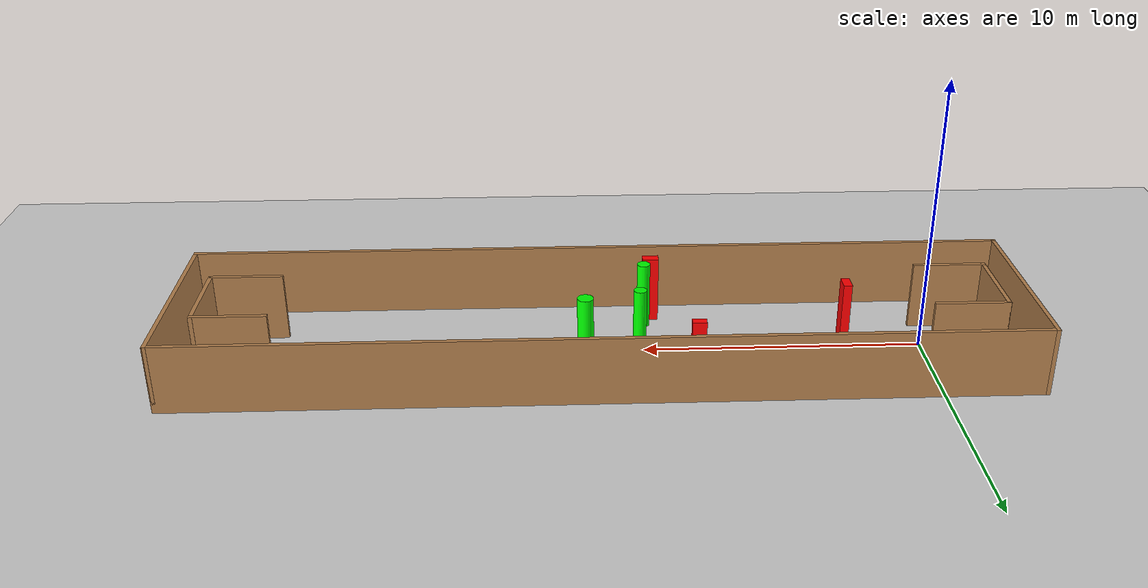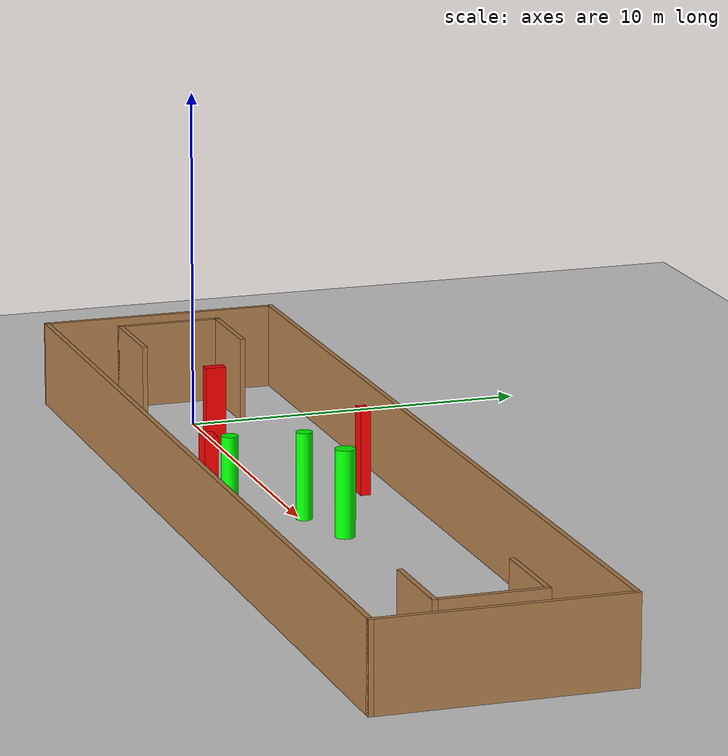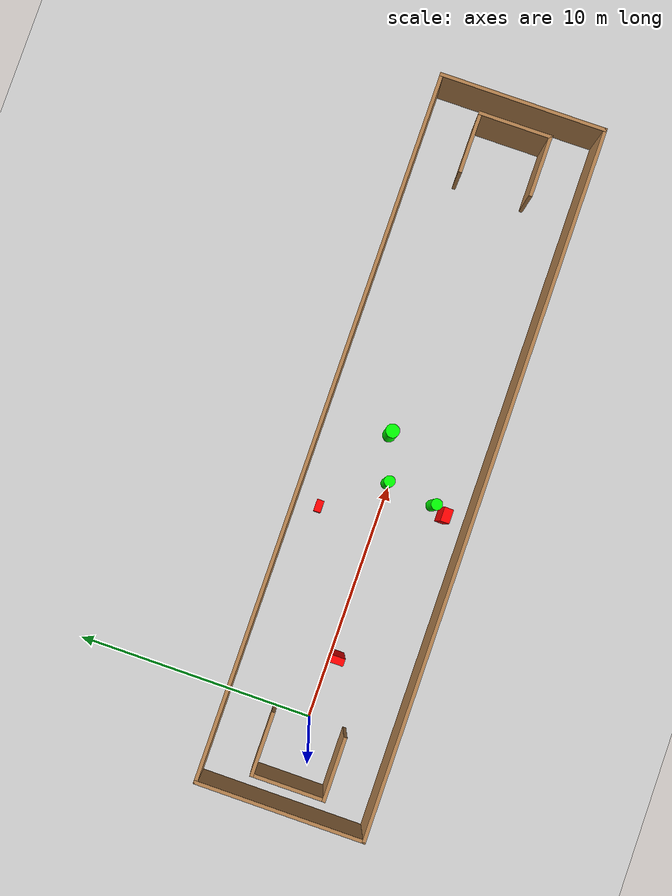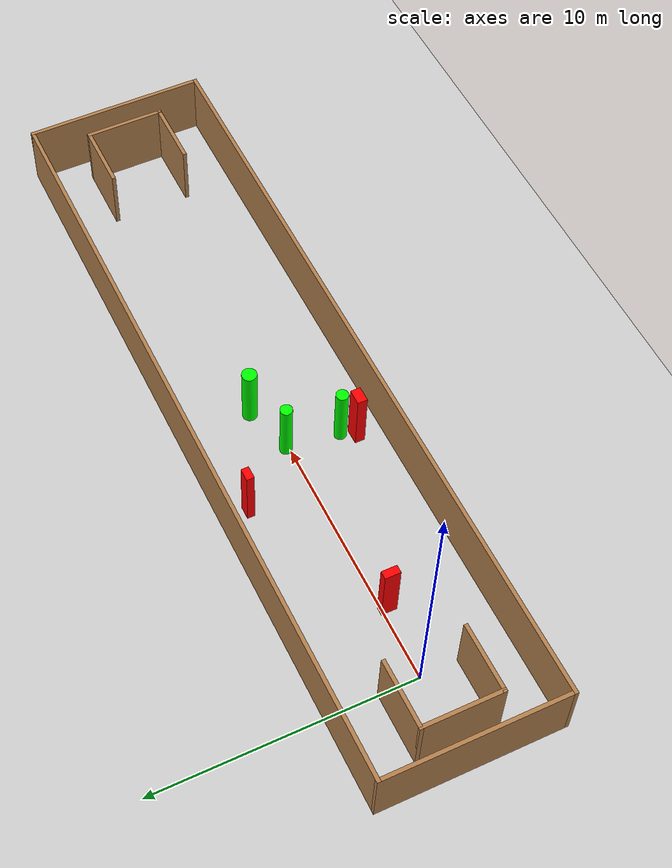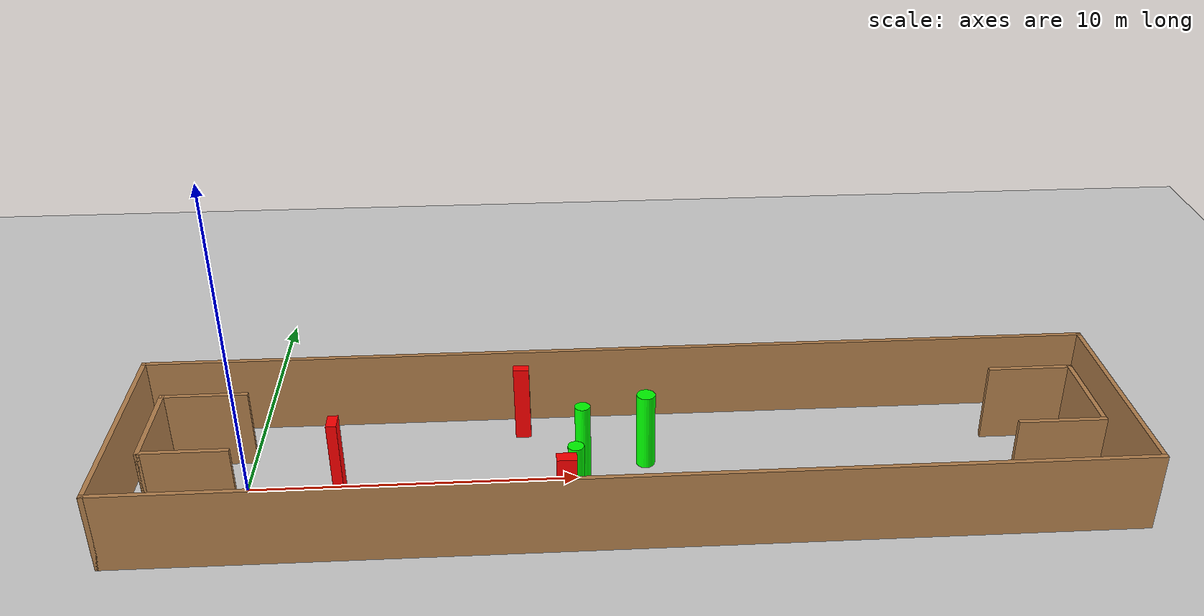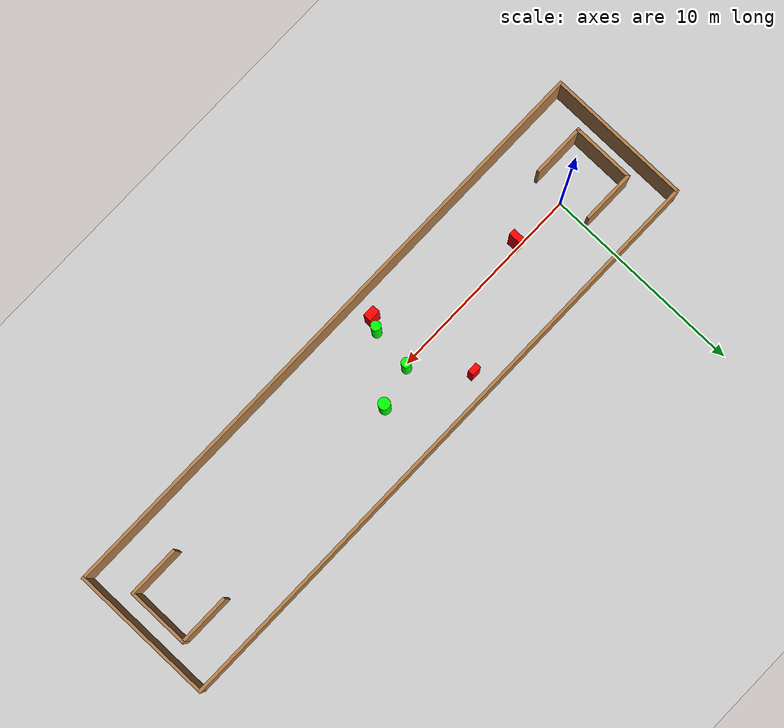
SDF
<sdf version="1.7">
 <world name="default">
  <light name="sun" type="directional">
   <pose>0 0 10 0 -0 0</pose>
   <diffuse>0.8 0.8 0.8 1</diffuse>
   <specular>0.2 0.2 0.2 1</specular>
   <attenuation>
    <range>1000</range>
    <constant>0.9</constant>
    <linear>0.01</linear>
    <quadratic>0.001</quadratic>
   </attenuation>
   <direction>-0.5 0.1 -0.9</direction>
   <spot><inner_angle>0</inner_angle><outer_angle>0</outer_angle><falloff>0</falloff></spot>
  </light>
  <model name="ground_plane">
   <static>1</static>
   <link name="link">
    <collision name="collision">
     <geometry><plane><normal>0 0 1</normal><size>100 100</size></plane></geometry>
     <surface>
      <contact><collide_bitmask>65535</collide_bitmask></contact>
      <friction><ode><mu>100</mu><mu2>50</mu2></ode></friction>
     </surface>
    </collision>
    <visual name="visual">
     <cast_shadows>0</cast_shadows>
     <geometry><plane><normal>0 0 1</normal><size>100 100</size></plane></geometry>
     <material>
      <script><uri>file://media/materials/scripts/gazebo.material</uri><name>Gazebo/Grey</name></script>
     </material>
    </visual>
   </link>
  </model>
  <gravity>0 0 -9.8</gravity>
  <magnetic_field>6e-06 2.3e-05 -4.2e-05</magnetic_field>
  <atmosphere type="adiabatic"/>
  <physics type="ode">
   <max_step_size>0.001</max_step_size>
   <real_time_factor>1</real_time_factor>
   <real_time_update_rate>1000</real_time_update_rate>
  </physics>
  <scene><ambient>0.4 0.4 0.4 1</ambient><background>0.7 0.7 0.7 1</background><shadows>1</shadows></scene>
  <spherical_coordinates>
   <surface_model>EARTH_WGS84</surface_model>
   <latitude_deg>0</latitude_deg>
   <longitude_deg>0</longitude_deg>
   <elevation>0</elevation>
   <heading_deg>0</heading_deg>
  </spherical_coordinates>
  <model name="my_base_walls">
   <link name="Wall_0">
    <collision name="Wall_0_Collision">
     <geometry><box><size>7.15 0.15 2.5</size></box></geometry>
     <pose>0 0 1.25 0 -0 0</pose>
    </collision>
    <visual name="Wall_0_Visual">
     <pose>0 0 1.25 0 -0 0</pose>
     <geometry><box><size>7.15 0.15 2.5</size></box></geometry>
     <material>
      <script><uri>file://media/materials/scripts/gazebo.material</uri><name>Gazebo/Wood</name></script>
      <ambient>1 1 1 1</ambient>
     </material>
     <meta><layer>0</layer></meta>
    </visual>
    <pose>-15 0 0 0 -0 1.5708</pose>
   </link>
   <link name="Wall_10">
    <collision name="Wall_10_Collision">
     <geometry><box><size>2.65 0.15 2.5</size></box></geometry>
     <pose>0 0 1.25 0 -0 0</pose>
    </collision>
    <visual name="Wall_10_Visual">
     <pose>0 0 1.25 0 -0 0</pose>
     <geometry><box><size>2.65 0.15 2.5</size></box></geometry>
     <material>
      <script><uri>file://media/materials/scripts/gazebo.material</uri><name>Gazebo/Wood</name></script>
      <ambient>1 1 1 1</ambient>
     </material>
     <meta><layer>0</layer></meta>
    </visual>
    <pose>-12.75 -1.5 0 0 -0 0</pose>
   </link>
   <link name="Wall_12">
    <collision name="Wall_12_Collision">
     <geometry><box><size>2.65 0.15 2.5</size></box></geometry>
     <pose>0 0 1.25 0 -0 0</pose>
    </collision>
    <visual name="Wall_12_Visual">
     <pose>0 0 1.25 0 -0 0</pose>
     <geometry><box><size>2.65 0.15 2.5</size></box></geometry>
     <material>
      <script><uri>file://media/materials/scripts/gazebo.material</uri><name>Gazebo/Wood</name></script>
      <ambient>1 1 1 1</ambient>
     </material>
     <meta><layer>0</layer></meta>
    </visual>
    <pose>-12.75 1.5 0 0 -0 0</pose>
   </link>
   <link name="Wall_14">
    <collision name="Wall_14_Collision">
     <geometry><box><size>3.15 0.15 2.5</size></box></geometry>
     <pose>0 0 1.25 0 -0 0</pose>
    </collision>
    <visual name="Wall_14_Visual">
     <pose>0 0 1.25 0 -0 0</pose>
     <geometry><box><size>3.15 0.15 2.5</size></box></geometry>
     <material>
      <script><uri>file://media/materials/scripts/gazebo.material</uri><name>Gazebo/Wood</name></script>
      <ambient>1 1 1 1</ambient>
     </material>
     <meta><layer>0</layer></meta>
    </visual>
    <pose>14 0 0 0 -0 -1.5708</pose>
   </link>
   <link name="Wall_15">
    <collision name="Wall_15_Collision">
     <geometry><box><size>2.65 0.15 2.5</size></box></geometry>
     <pose>0 0 1.25 0 -0 0</pose>
    </collision>
    <visual name="Wall_15_Visual">
     <pose>0 0 1.25 0 -0 0</pose>
     <geometry><box><size>2.65 0.15 2.5</size></box></geometry>
     <material>
      <script><uri>file://media/materials/scripts/gazebo.material</uri><name>Gazebo/Wood</name></script>
      <ambient>1 1 1 1</ambient>
     </material>
     <meta><layer>0</layer></meta>
    </visual>
    <pose>12.75 -1.5 0 0 -0 3.14159</pose>
   </link>
   <link name="Wall_17">
    <collision name="Wall_17_Collision">
     <geometry><box><size>2.65 0.15 2.5</size></box></geometry>
     <pose>0 0 1.25 0 -0 0</pose>
    </collision>
    <visual name="Wall_17_Visual">
     <pose>0 0 1.25 0 -0 0</pose>
     <geometry><box><size>2.65 0.15 2.5</size></box></geometry>
     <material>
      <script><uri>file://media/materials/scripts/gazebo.material</uri><name>Gazebo/Wood</name></script>
      <ambient>1 1 1 1</ambient>
     </material>
     <meta><layer>0</layer></meta>
    </visual>
    <pose>12.75 1.5 0 0 -0 3.14159</pose>
   </link>
   <link name="Wall_2">
    <collision name="Wall_2_Collision">
     <geometry><box><size>30.15 0.15 2.5</size></box></geometry>
     <pose>0 0 1.25 0 -0 0</pose>
    </collision>
    <visual name="Wall_2_Visual">
     <pose>0 0 1.25 0 -0 0</pose>
     <geometry><box><size>30.15 0.15 2.5</size></box></geometry>
     <material>
      <script><uri>file://media/materials/scripts/gazebo.material</uri><name>Gazebo/Wood</name></script>
      <ambient>1 1 1 1</ambient>
     </material>
     <meta><layer>0</layer></meta>
    </visual>
    <pose>-0 -3.5 0 0 -0 0</pose>
   </link>
   <link name="Wall_4">
    <collision name="Wall_4_Collision">
     <geometry><box><size>30.15 0.15 2.5</size></box></geometry>
     <pose>0 0 1.25 0 -0 0</pose>
    </collision>
    <visual name="Wall_4_Visual">
     <pose>0 0 1.25 0 -0 0</pose>
     <geometry><box><size>30.15 0.15 2.5</size></box></geometry>
     <material>
      <script><uri>file://media/materials/scripts/gazebo.material</uri><name>Gazebo/Wood</name></script>
      <ambient>1 1 1 1</ambient>
     </material>
     <meta><layer>0</layer></meta>
    </visual>
    <pose>-0 3.5 0 0 -0 0</pose>
   </link>
   <link name="Wall_6">
    <collision name="Wall_6_Collision">
     <geometry><box><size>7.15 0.15 2.5</size></box></geometry>
     <pose>0 0 1.25 0 -0 0</pose>
    </collision>
    <visual name="Wall_6_Visual">
     <pose>0 0 1.25 0 -0 0</pose>
     <geometry><box><size>7.15 0.15 2.5</size></box></geometry>
     <material>
      <script><uri>file://media/materials/scripts/gazebo.material</uri><name>Gazebo/Wood</name></script>
      <ambient>1 1 1 1</ambient>
     </material>
     <meta><layer>0</layer></meta>
    </visual>
    <pose>15 0 0 0 -0 -1.5708</pose>
   </link>
   <link name="Wall_9">
    <collision name="Wall_9_Collision">
     <geometry><box><size>3.15 0.15 2.5</size></box></geometry>
     <pose>0 0 1.25 0 -0 0</pose>
    </collision>
    <visual name="Wall_9_Visual">
     <pose>0 0 1.25 0 -0 0</pose>
     <geometry><box><size>3.15 0.15 2.5</size></box></geometry>
     <material>
      <script><uri>file://media/materials/scripts/gazebo.material</uri><name>Gazebo/Wood</name></script>
      <ambient>1 1 1 1</ambient>
     </material>
     <meta><layer>0</layer></meta>
    </visual>
    <pose>-14 0 0 0 -0 -1.5708</pose>
   </link>
   <static>1</static>
   <pose>11.5 0 0 0 -0 0</pose>
  </model>
  <model name="cylinder1">
   <static>1</static>
   <link name="link">
    <inertial>
     <mass>1</mass>
     <inertia><ixx>0.5</ixx><ixy>0</ixy><ixz>0</ixz><iyy>0.5</iyy><iyz>0</iyz><izz>1</izz></inertia>
    </inertial>
    <collision name="collision">
     <geometry><cylinder><radius>0.28708349874393624</radius><length>2.5</length></cylinder></geometry>
    </collision>
    <visual name="visual">
     <geometry><cylinder><radius>0.28708349874393624</radius><length>2.5</length></cylinder></geometry>
     <material>
      <ambient>0 1 0 1</ambient>
      <diffuse>0 1 0 1</diffuse>
      <specular>0.1 0.1 0.1 1</specular>
      <emissive>0 0 0 0</emissive>
     </material>
    </visual>
   </link>
   <pose>12.119835341841137 0.6716176327611816 1.25 0 0 0</pose>
  </model>
  <model name="cylinder2">
   <static>1</static>
   <link name="link">
    <inertial>
     <mass>1</mass>
     <inertia><ixx>0.5</ixx><ixy>0</ixy><ixz>0</ixz><iyy>0.5</iyy><iyz>0</iyz><izz>1</izz></inertia>
    </inertial>
    <collision name="collision">
     <geometry><cylinder><radius>0.23429734843750544</radius><length>2.5</length></cylinder></geometry>
    </collision>
    <visual name="visual">
     <geometry><cylinder><radius>0.23429734843750544</radius><length>2.5</length></cylinder></geometry>
     <material>
      <ambient>0 1 0 1</ambient>
      <diffuse>0 1 0 1</diffuse>
      <specular>0.1 0.1 0.1 1</specular>
      <emissive>0 0 0 0</emissive>
     </material>
    </visual>
   </link>
   <pose>10.172130842588352 0.13203580489814248 1.25 0 0 0</pose>
  </model>
  <model name="cylinder3">
   <static>1</static>
   <link name="link">
    <inertial>
     <mass>1</mass>
     <inertia><ixx>0.5</ixx><ixy>0</ixy><ixz>0</ixz><iyy>0.5</iyy><iyz>0</iyz><izz>1</izz></inertia>
    </inertial>
    <collision name="collision">
     <geometry><cylinder><radius>0.23746784665213588</radius><length>2.5</length></cylinder></geometry>
    </collision>
    <visual name="visual">
     <geometry><cylinder><radius>0.23746784665213588</radius><length>2.5</length></cylinder></geometry>
     <material>
      <ambient>0 1 0 1</ambient>
      <diffuse>0 1 0 1</diffuse>
      <specular>0.1 0.1 0.1 1</specular>
      <emissive>0 0 0 0</emissive>
     </material>
    </visual>
   </link>
   <pose>9.916683798749146 -1.9414413414659277 1.25 0 0 0</pose>
  </model>
  <model name="box1">
   <static>1</static>
   <link name="link">
    <inertial>
     <mass>1</mass>
     <inertia><ixx>0.083</ixx><ixy>0</ixy><ixz>0</ixz><iyy>0.083</iyy><iyz>0</iyz><izz>0.083</izz></inertia>
    </inertial>
    <collision name="collision">
     <geometry><box><size>0.5895570982622155 0.3831025481037571 2.5</size></box></geometry>
    </collision>
    <visual name="visual">
     <geometry><box><size>0.5895570982622155 0.3831025481037571 2.5</size></box></geometry>
     <material>
      <ambient>1 0 0 1</ambient>
      <diffuse>1 0 0 1</diffuse>
      <specular>0.1 0.1 0.1 1</specular>
      <emissive>0 0 0 0</emissive>
     </material>
    </visual>
    <sensor name="my_contact" type="contact">
     <contact><collision>box_collision</collision><topic>__default_topic__</topic></contact>
    </sensor>
   </link>
   <pose>9.639028713519327 -2.4604592621952452 1.25 0 0 0</pose>
  </model>
  <model name="box2">
   <static>1</static>
   <link name="link">
    <inertial>
     <mass>1</mass>
     <inertia><ixx>0.083</ixx><ixy>0</ixy><ixz>0</ixz><iyy>0.083</iyy><iyz>0</iyz><izz>0.083</izz></inertia>
    </inertial>
    <collision name="collision">
     <geometry><box><size>0.489153334302803 0.293292388277558 2.5</size></box></geometry>
    </collision>
    <visual name="visual">
     <geometry><box><size>0.489153334302803 0.293292388277558 2.5</size></box></geometry>
     <material>
      <ambient>1 0 0 1</ambient>
      <diffuse>1 0 0 1</diffuse>
      <specular>0.1 0.1 0.1 1</specular>
      <emissive>0 0 0 0</emissive>
     </material>
    </visual>
    <sensor name="my_contact" type="contact">
     <contact><collision>box_collision</collision><topic>__default_topic__</topic></contact>
    </sensor>
   </link>
   <pose>8.327510973974007 2.4729324425354893 1.25 0 0 0</pose>
  </model>
  <model name="box3">
   <static>1</static>
   <link name="link">
    <inertial>
     <mass>1</mass>
     <inertia><ixx>0.083</ixx><ixy>0</ixy><ixz>0</ixz><iyy>0.083</iyy><iyz>0</iyz><izz>0.083</izz></inertia>
    </inertial>
    <collision name="collision">
     <geometry><box><size>0.31078320591272485 0.5998433874923356 2.5</size></box></geometry>
    </collision>
    <visual name="visual">
     <geometry><box><size>0.31078320591272485 0.5998433874923356 2.5</size></box></geometry>
     <material>
      <ambient>1 0 0 1</ambient>
      <diffuse>1 0 0 1</diffuse>
      <specular>0.1 0.1 0.1 1</specular>
      <emissive>0 0 0 0</emissive>
     </material>
    </visual>
    <sensor name="my_contact" type="contact">
     <contact><collision>box_collision</collision><topic>__default_topic__</topic></contact>
    </sensor>
   </link>
   <pose>2.804571378590662 -0.2029821090514483 1.25 0 0 0</pose>
  </model>
 </world>
</sdf>
